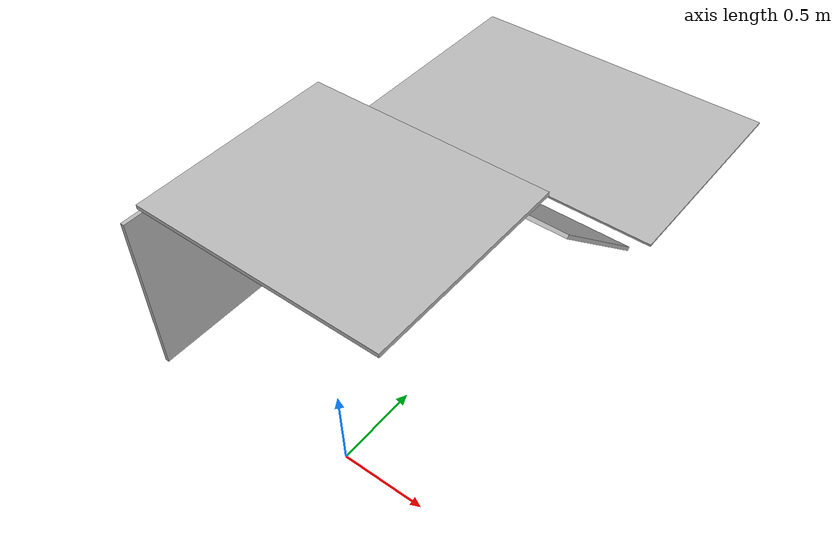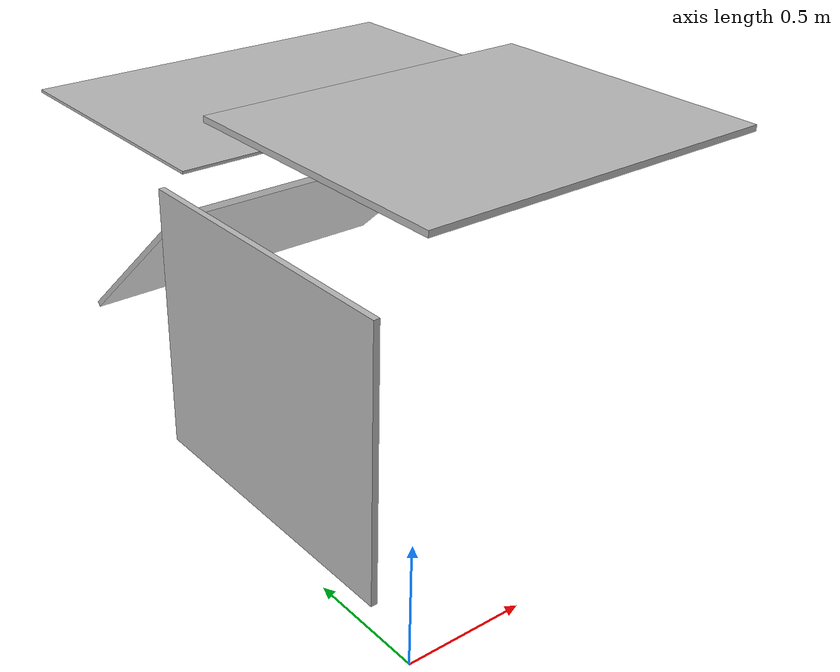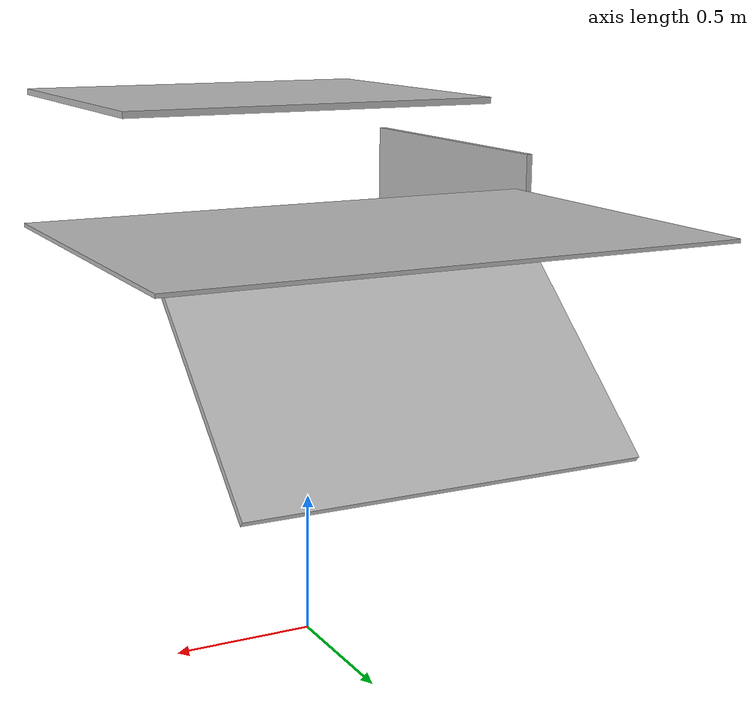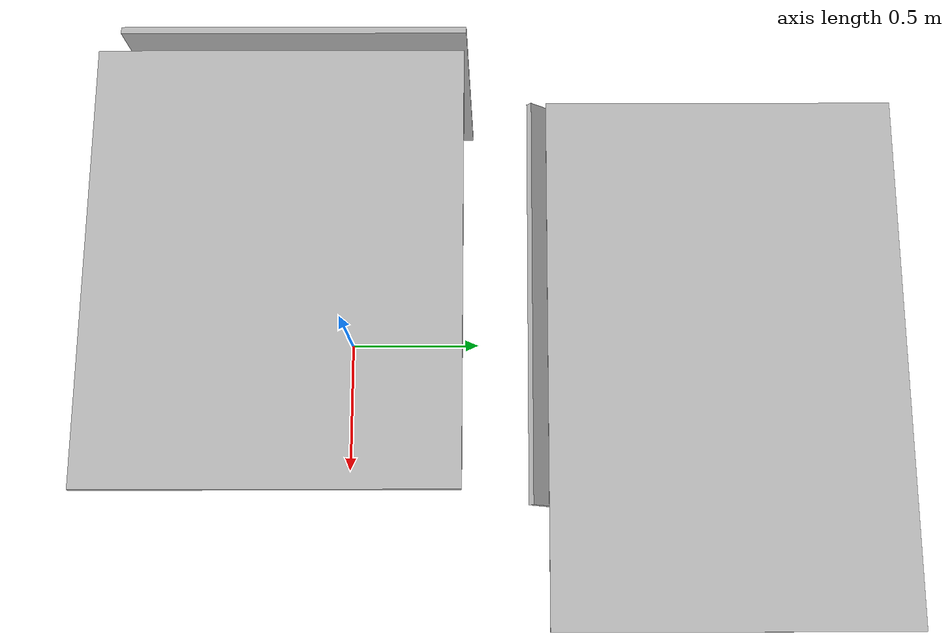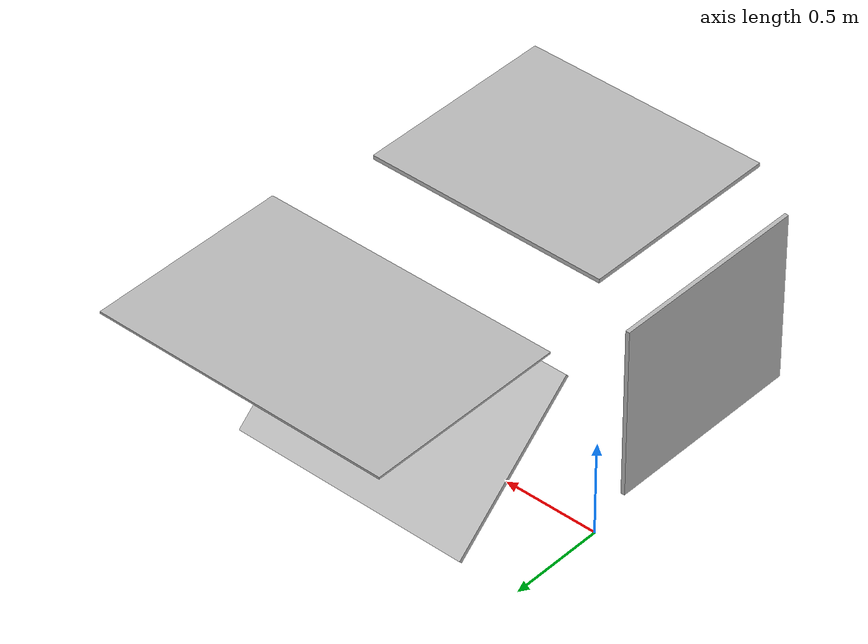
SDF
<?xml version="1.0"?>
<sdf version="1.7">
	<!-- One can change this world to his needs or use another one. -->

	<world name="default">

		<model name="TableBehind">
			<pose> -0.55 0.0 1.3 0.0 0.0 0.0</pose>
			<static>true</static>
			<link name='linkTableBehind'>
				<pose>0 0 0 0 0 0</pose>

				<collision name="my_collisionlinkTableBehind">
					<pose>0 0 0 0 0 0</pose>
					<geometry>
						<box>
							<size>0.02 1.0 0.85</size>
						</box>
					</geometry>
				</collision>

				<visual name="my_visuallinkTableBehind">
					<geometry>
						<box>
							<size>0.02 1.0 0.85</size>
						</box>
					</geometry>
				</visual>

				<self_collide>0</self_collide>
				<gravity>1</gravity>
			</link>
		</model>

		<model name="TableRoof">
			<pose> 0.2 0.0 1.9 0.0 0.0 0.0</pose>
			<static>true</static>
			<link name='linkTableRoof'>
				<pose>0 0 0 0 0 0</pose>

				<collision name="my_collisionTableRoof">
					<pose>0 0 0 0 0 0</pose>
					<geometry>
						<box>
							<size>1.2 1.0 0.02</size>
						</box>
					</geometry>
				</collision>

				<visual name="my_visualTableRoof">
					<geometry>
						<box>
							<size>1.2 1.0 0.02</size>
						</box>
					</geometry>
				</visual>

				<self_collide>0</self_collide>
				<gravity>1</gravity>
			</link>
		</model>

		<model name="TableRight">
			<pose>0.2 1.0 1.25 -2.3 0 0 </pose>
			<static>true</static>
			<link name='linkTableRight'>
				<pose>0 0 0 0 0 0</pose>

				<collision name="my_collisionTableRight">
					<pose>0 0 0 0 0 0</pose>
					<geometry>
						<box>
							<size>1.2 0.02 0.85</size>
						</box>
					</geometry>
				</collision>

				<visual name="my_visualTableRight">
					<geometry>
						<box>
							<size>1.2 0.02 0.85</size>
						</box>
					</geometry>
				</visual>

				<self_collide>0</self_collide>
				<gravity>1</gravity>
			</link>
		</model>

		<model name="Camera">
			<pose>0.4 1.23 1.65 0.0 0.0 0.0</pose>
			<static>true</static>
			<link name='linkCamera'>
				<pose>0 0 0 0 0 0</pose>

				<collision name="my_collisionCamera">
					<pose>0 0 0 0 0 0</pose>
					<geometry>
						<box>
							<size>1.5 1.0 0.01</size>
						</box>
					</geometry>
				</collision>

				<visual name="my_visualCamera">
					<geometry>
						<box>
							<size>1.5 1.0 0.01</size>
						</box>
					</geometry>
				</visual>

				<self_collide>0</self_collide>
				<gravity>1</gravity>
			</link>
		</model>

	</world>
</sdf>
